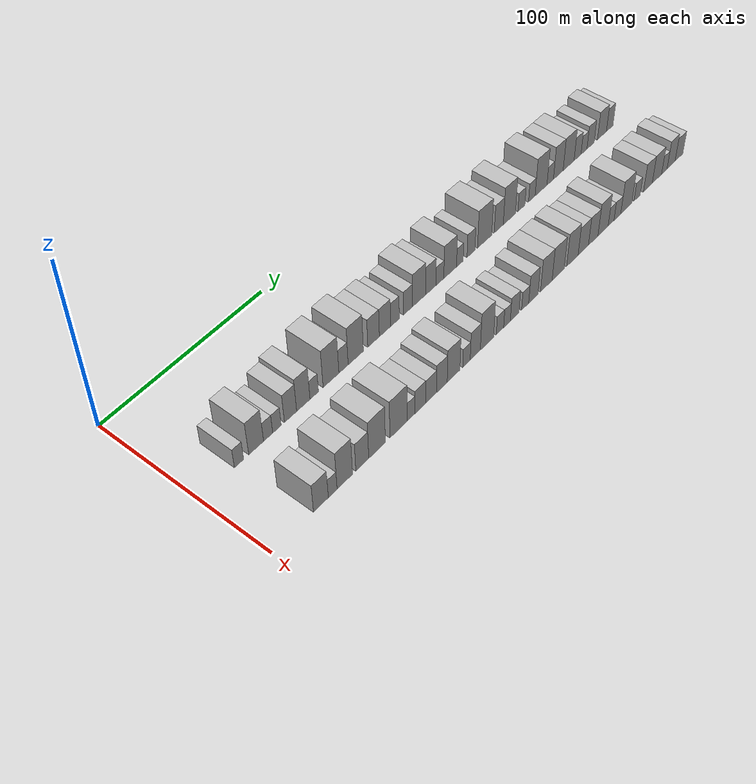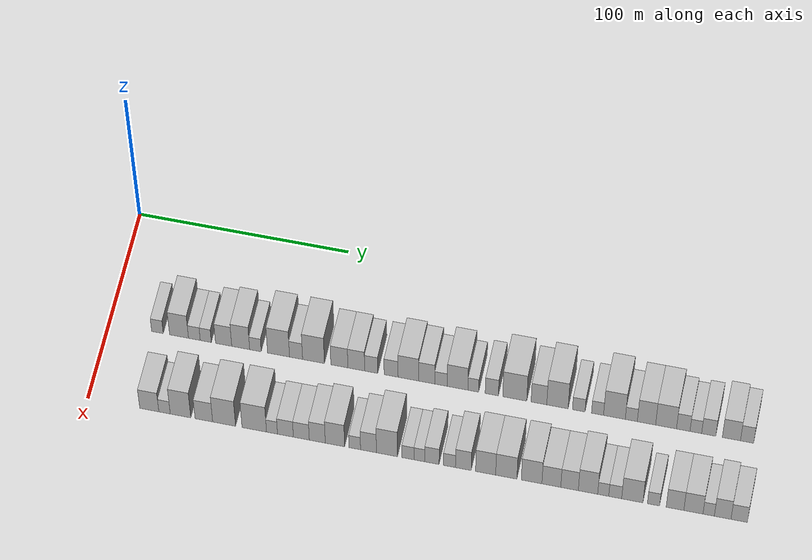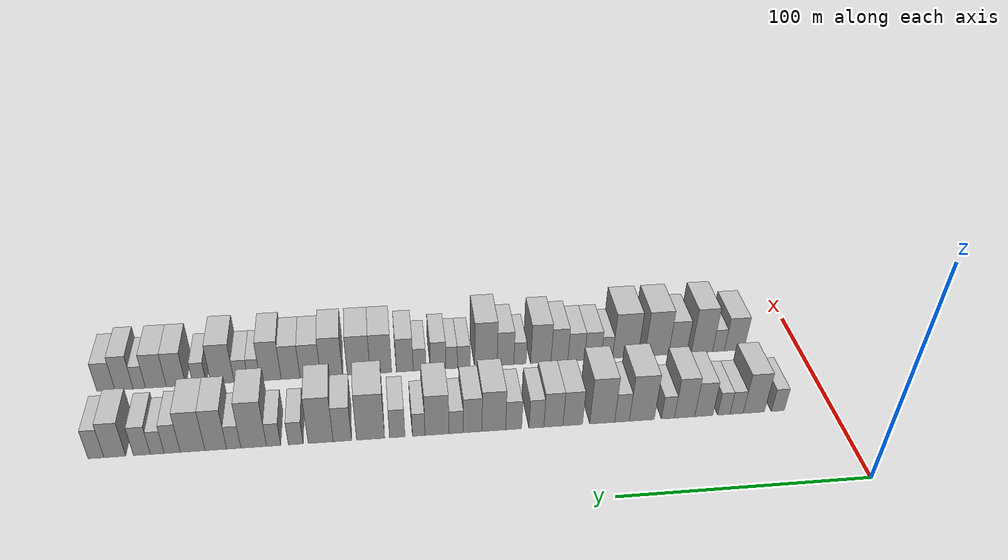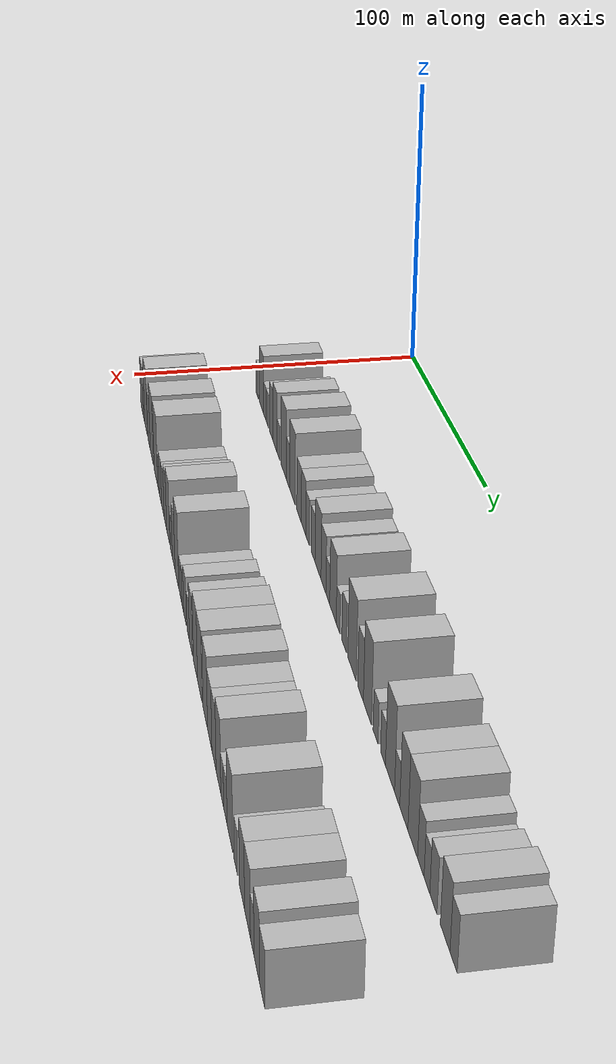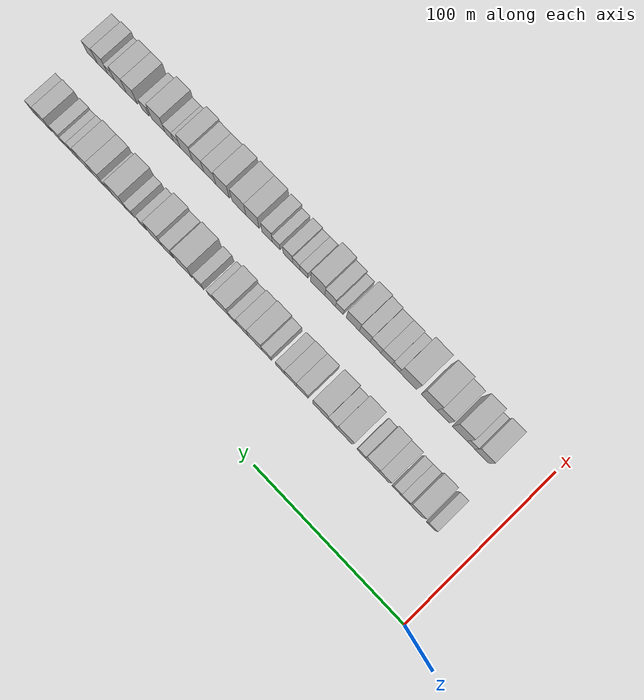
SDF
<sdf version="1.6">
 <world name="default">
  <model name="building_39">
   <static>1</static>
   <pose>50.0000 23.1446 0 0.000000 0.000000 0.000000</pose>
   <link name="link">
    <pose>0 0 6.00 0 0 0</pose>
    <collision name="collision"><geometry><box><size>20.0000 5.5098 12.0000</size></box></geometry></collision>
    <visual name="visual">
     <cast_shadows>0</cast_shadows>
     <geometry><box><size>20.0000 5.5098 12.0000</size></box></geometry>
     <material>
      <script>
       <uri>model://HANNAS_wall/materials/scripts</uri>
       <uri>model://HANNAS_wall/materials/textures</uri>
       <name>vrc/HANNAS_wall</name>
      </script>
     </material>
    </visual>
   </link>
  </model>
  <model name="building_40">
   <static>1</static>
   <pose>50.0000 33.3814 0 0.000000 0.000000 0.000000</pose>
   <link name="link">
    <pose>0 0 10.50 0 0 0</pose>
    <collision name="collision"><geometry><box><size>20.0000 8.9638 21.0000</size></box></geometry></collision>
    <visual name="visual">
     <cast_shadows>0</cast_shadows>
     <geometry><box><size>20.0000 8.9638 21.0000</size></box></geometry>
     <material>
      <script>
       <uri>model://HANNAS_wall/materials/scripts</uri>
       <uri>model://HANNAS_wall/materials/textures</uri>
       <name>vrc/HANNAS_wall</name>
      </script>
     </material>
    </visual>
   </link>
  </model>
  <model name="building_41">
   <static>1</static>
   <pose>50.0000 40.6483 0 0.000000 0.000000 0.000000</pose>
   <link name="link">
    <pose>0 0 6.00 0 0 0</pose>
    <collision name="collision"><geometry><box><size>20.0000 5.5700 12.0000</size></box></geometry></collision>
    <visual name="visual">
     <cast_shadows>0</cast_shadows>
     <geometry><box><size>20.0000 5.5700 12.0000</size></box></geometry>
     <material>
      <script>
       <uri>model://HANNAS_wall/materials/scripts</uri>
       <uri>model://HANNAS_wall/materials/textures</uri>
       <name>vrc/HANNAS_wall</name>
      </script>
     </material>
    </visual>
   </link>
  </model>
  <model name="building_42">
   <static>1</static>
   <pose>50.0000 46.0547 0 0.000000 0.000000 0.000000</pose>
   <link name="link">
    <pose>0 0 6.00 0 0 0</pose>
    <collision name="collision"><geometry><box><size>20.0000 5.2428 12.0000</size></box></geometry></collision>
    <visual name="visual">
     <cast_shadows>0</cast_shadows>
     <geometry><box><size>20.0000 5.2428 12.0000</size></box></geometry>
     <material>
      <script>
       <uri>model://HANNAS_wall/materials/scripts</uri>
       <uri>model://HANNAS_wall/materials/textures</uri>
       <name>vrc/HANNAS_wall</name>
      </script>
     </material>
    </visual>
   </link>
  </model>
  <model name="building_43">
   <static>1</static>
   <pose>50.0000 54.5110 0 0.000000 0.000000 0.000000</pose>
   <link name="link">
    <pose>0 0 9.00 0 0 0</pose>
    <collision name="collision"><geometry><box><size>20.0000 7.6698 18.0000</size></box></geometry></collision>
    <visual name="visual">
     <cast_shadows>0</cast_shadows>
     <geometry><box><size>20.0000 7.6698 18.0000</size></box></geometry>
     <material>
      <script>
       <uri>model://HANNAS_wall/materials/scripts</uri>
       <uri>model://HANNAS_wall/materials/textures</uri>
       <name>vrc/HANNAS_wall</name>
      </script>
     </material>
    </visual>
   </link>
  </model>
  <model name="building_44">
   <static>1</static>
   <pose>50.0000 62.5770 0 0.000000 0.000000 0.000000</pose>
   <link name="link">
    <pose>0 0 10.50 0 0 0</pose>
    <collision name="collision"><geometry><box><size>20.0000 8.4621 21.0000</size></box></geometry></collision>
    <visual name="visual">
     <cast_shadows>0</cast_shadows>
     <geometry><box><size>20.0000 8.4621 21.0000</size></box></geometry>
     <material>
      <script>
       <uri>model://HANNAS_wall/materials/scripts</uri>
       <uri>model://HANNAS_wall/materials/textures</uri>
       <name>vrc/HANNAS_wall</name>
      </script>
     </material>
    </visual>
   </link>
  </model>
  <model name="building_45">
   <static>1</static>
   <pose>50.0000 69.5375 0 0.000000 0.000000 0.000000</pose>
   <link name="link">
    <pose>0 0 6.00 0 0 0</pose>
    <collision name="collision"><geometry><box><size>20.0000 5.4590 12.0000</size></box></geometry></collision>
    <visual name="visual">
     <cast_shadows>0</cast_shadows>
     <geometry><box><size>20.0000 5.4590 12.0000</size></box></geometry>
     <material>
      <script>
       <uri>model://HANNAS_wall/materials/scripts</uri>
       <uri>model://HANNAS_wall/materials/textures</uri>
       <name>vrc/HANNAS_wall</name>
      </script>
     </material>
    </visual>
   </link>
  </model>
  <model name="building_46">
   <static>1</static>
   <pose>50.0000 80.4547 0 0.000000 0.000000 0.000000</pose>
   <link name="link">
    <pose>0 0 12.00 0 0 0</pose>
    <collision name="collision"><geometry><box><size>20.0000 10.3753 24.0000</size></box></geometry></collision>
    <visual name="visual">
     <cast_shadows>0</cast_shadows>
     <geometry><box><size>20.0000 10.3753 24.0000</size></box></geometry>
     <material>
      <script>
       <uri>model://HANNAS_wall/materials/scripts</uri>
       <uri>model://HANNAS_wall/materials/textures</uri>
       <name>vrc/HANNAS_wall</name>
      </script>
     </material>
    </visual>
   </link>
  </model>
  <model name="building_47">
   <static>1</static>
   <pose>50.0000 88.7172 0 0.000000 0.000000 0.000000</pose>
   <link name="link">
    <pose>0 0 7.50 0 0 0</pose>
    <collision name="collision"><geometry><box><size>20.0000 6.1498 15.0000</size></box></geometry></collision>
    <visual name="visual">
     <cast_shadows>0</cast_shadows>
     <geometry><box><size>20.0000 6.1498 15.0000</size></box></geometry>
     <material>
      <script>
       <uri>model://HANNAS_wall/materials/scripts</uri>
       <uri>model://HANNAS_wall/materials/textures</uri>
       <name>vrc/HANNAS_wall</name>
      </script>
     </material>
    </visual>
   </link>
  </model>
  <model name="building_48">
   <static>1</static>
   <pose>50.0000 96.9360 0 0.000000 0.000000 0.000000</pose>
   <link name="link">
    <pose>0 0 12.00 0 0 0</pose>
    <collision name="collision"><geometry><box><size>20.0000 10.2880 24.0000</size></box></geometry></collision>
    <visual name="visual">
     <cast_shadows>0</cast_shadows>
     <geometry><box><size>20.0000 10.2880 24.0000</size></box></geometry>
     <material>
      <script>
       <uri>model://HANNAS_wall/materials/scripts</uri>
       <uri>model://HANNAS_wall/materials/textures</uri>
       <name>vrc/HANNAS_wall</name>
      </script>
     </material>
    </visual>
   </link>
  </model>
  <model name="building_49">
   <static>1</static>
   <pose>50.0000 109.0891 0 0.000000 0.000000 0.000000</pose>
   <link name="link">
    <pose>0 0 9.00 0 0 0</pose>
    <collision name="collision"><geometry><box><size>20.0000 8.0180 18.0000</size></box></geometry></collision>
    <visual name="visual">
     <cast_shadows>0</cast_shadows>
     <geometry><box><size>20.0000 8.0180 18.0000</size></box></geometry>
     <material>
      <script>
       <uri>model://HANNAS_wall/materials/scripts</uri>
       <uri>model://HANNAS_wall/materials/textures</uri>
       <name>vrc/HANNAS_wall</name>
      </script>
     </material>
    </visual>
   </link>
  </model>
  <model name="building_50">
   <static>1</static>
   <pose>50.0000 117.0477 0 0.000000 0.000000 0.000000</pose>
   <link name="link">
    <pose>0 0 9.00 0 0 0</pose>
    <collision name="collision"><geometry><box><size>20.0000 7.8993 18.0000</size></box></geometry></collision>
    <visual name="visual">
     <cast_shadows>0</cast_shadows>
     <geometry><box><size>20.0000 7.8993 18.0000</size></box></geometry>
     <material>
      <script>
       <uri>model://HANNAS_wall/materials/scripts</uri>
       <uri>model://HANNAS_wall/materials/textures</uri>
       <name>vrc/HANNAS_wall</name>
      </script>
     </material>
    </visual>
   </link>
  </model>
  <model name="building_51">
   <static>1</static>
   <pose>50.0000 124.0484 0 0.000000 0.000000 0.000000</pose>
   <link name="link">
    <pose>0 0 7.50 0 0 0</pose>
    <collision name="collision"><geometry><box><size>20.0000 6.1020 15.0000</size></box></geometry></collision>
    <visual name="visual">
     <cast_shadows>0</cast_shadows>
     <geometry><box><size>20.0000 6.1020 15.0000</size></box></geometry>
     <material>
      <script>
       <uri>model://HANNAS_wall/materials/scripts</uri>
       <uri>model://HANNAS_wall/materials/textures</uri>
       <name>vrc/HANNAS_wall</name>
      </script>
     </material>
    </visual>
   </link>
  </model>
  <model name="building_52">
   <static>1</static>
   <pose>50.0000 133.3805 0 0.000000 0.000000 0.000000</pose>
   <link name="link">
    <pose>0 0 7.50 0 0 0</pose>
    <collision name="collision"><geometry><box><size>20.0000 6.5623 15.0000</size></box></geometry></collision>
    <visual name="visual">
     <cast_shadows>0</cast_shadows>
     <geometry><box><size>20.0000 6.5623 15.0000</size></box></geometry>
     <material>
      <script>
       <uri>model://HANNAS_wall/materials/scripts</uri>
       <uri>model://HANNAS_wall/materials/textures</uri>
       <name>vrc/HANNAS_wall</name>
      </script>
     </material>
    </visual>
   </link>
  </model>
  <model name="building_53">
   <static>1</static>
   <pose>50.0000 141.4702 0 0.000000 0.000000 0.000000</pose>
   <link name="link">
    <pose>0 0 10.50 0 0 0</pose>
    <collision name="collision"><geometry><box><size>20.0000 9.6170 21.0000</size></box></geometry></collision>
    <visual name="visual">
     <cast_shadows>0</cast_shadows>
     <geometry><box><size>20.0000 9.6170 21.0000</size></box></geometry>
     <material>
      <script>
       <uri>model://HANNAS_wall/materials/scripts</uri>
       <uri>model://HANNAS_wall/materials/textures</uri>
       <name>vrc/HANNAS_wall</name>
      </script>
     </material>
    </visual>
   </link>
  </model>
  <model name="building_54">
   <static>1</static>
   <pose>50.0000 150.0559 0 0.000000 0.000000 0.000000</pose>
   <link name="link">
    <pose>0 0 9.00 0 0 0</pose>
    <collision name="collision"><geometry><box><size>20.0000 7.5544 18.0000</size></box></geometry></collision>
    <visual name="visual">
     <cast_shadows>0</cast_shadows>
     <geometry><box><size>20.0000 7.5544 18.0000</size></box></geometry>
     <material>
      <script>
       <uri>model://HANNAS_wall/materials/scripts</uri>
       <uri>model://HANNAS_wall/materials/textures</uri>
       <name>vrc/HANNAS_wall</name>
      </script>
     </material>
    </visual>
   </link>
  </model>
  <model name="building_55">
   <static>1</static>
   <pose>50.0000 156.7606 0 0.000000 0.000000 0.000000</pose>
   <link name="link">
    <pose>0 0 6.00 0 0 0</pose>
    <collision name="collision"><geometry><box><size>20.0000 5.8550 12.0000</size></box></geometry></collision>
    <visual name="visual">
     <cast_shadows>0</cast_shadows>
     <geometry><box><size>20.0000 5.8550 12.0000</size></box></geometry>
     <material>
      <script>
       <uri>model://HANNAS_wall/materials/scripts</uri>
       <uri>model://HANNAS_wall/materials/textures</uri>
       <name>vrc/HANNAS_wall</name>
      </script>
     </material>
    </visual>
   </link>
  </model>
  <model name="building_56">
   <static>1</static>
   <pose>50.0000 164.5068 0 0.000000 0.000000 0.000000</pose>
   <link name="link">
    <pose>0 0 10.50 0 0 0</pose>
    <collision name="collision"><geometry><box><size>20.0000 9.6375 21.0000</size></box></geometry></collision>
    <visual name="visual">
     <cast_shadows>0</cast_shadows>
     <geometry><box><size>20.0000 9.6375 21.0000</size></box></geometry>
     <material>
      <script>
       <uri>model://HANNAS_wall/materials/scripts</uri>
       <uri>model://HANNAS_wall/materials/textures</uri>
       <name>vrc/HANNAS_wall</name>
      </script>
     </material>
    </visual>
   </link>
  </model>
  <model name="building_57">
   <static>1</static>
   <pose>50.0000 171.8528 0 0.000000 0.000000 0.000000</pose>
   <link name="link">
    <pose>0 0 6.00 0 0 0</pose>
    <collision name="collision"><geometry><box><size>20.0000 5.0544 12.0000</size></box></geometry></collision>
    <visual name="visual">
     <cast_shadows>0</cast_shadows>
     <geometry><box><size>20.0000 5.0544 12.0000</size></box></geometry>
     <material>
      <script>
       <uri>model://HANNAS_wall/materials/scripts</uri>
       <uri>model://HANNAS_wall/materials/textures</uri>
       <name>vrc/HANNAS_wall</name>
      </script>
     </material>
    </visual>
   </link>
  </model>
  <model name="building_58">
   <static>1</static>
   <pose>50.0000 180.4692 0 0.000000 0.000000 0.000000</pose>
   <link name="link">
    <pose>0 0 7.50 0 0 0</pose>
    <collision name="collision"><geometry><box><size>20.0000 6.1785 15.0000</size></box></geometry></collision>
    <visual name="visual">
     <cast_shadows>0</cast_shadows>
     <geometry><box><size>20.0000 6.1785 15.0000</size></box></geometry>
     <material>
      <script>
       <uri>model://HANNAS_wall/materials/scripts</uri>
       <uri>model://HANNAS_wall/materials/textures</uri>
       <name>vrc/HANNAS_wall</name>
      </script>
     </material>
    </visual>
   </link>
  </model>
  <model name="building_59">
   <static>1</static>
   <pose>50.0000 191.1664 0 0.000000 0.000000 0.000000</pose>
   <link name="link">
    <pose>0 0 12.00 0 0 0</pose>
    <collision name="collision"><geometry><box><size>20.0000 11.2157 24.0000</size></box></geometry></collision>
    <visual name="visual">
     <cast_shadows>0</cast_shadows>
     <geometry><box><size>20.0000 11.2157 24.0000</size></box></geometry>
     <material>
      <script>
       <uri>model://HANNAS_wall/materials/scripts</uri>
       <uri>model://HANNAS_wall/materials/textures</uri>
       <name>vrc/HANNAS_wall</name>
      </script>
     </material>
    </visual>
   </link>
  </model>
  <model name="building_60">
   <static>1</static>
   <pose>50.0000 202.4280 0 0.000000 0.000000 0.000000</pose>
   <link name="link">
    <pose>0 0 9.00 0 0 0</pose>
    <collision name="collision"><geometry><box><size>20.0000 7.3075 18.0000</size></box></geometry></collision>
    <visual name="visual">
     <cast_shadows>0</cast_shadows>
     <geometry><box><size>20.0000 7.3075 18.0000</size></box></geometry>
     <material>
      <script>
       <uri>model://HANNAS_wall/materials/scripts</uri>
       <uri>model://HANNAS_wall/materials/textures</uri>
       <name>vrc/HANNAS_wall</name>
      </script>
     </material>
    </visual>
   </link>
  </model>
  <model name="building_61">
   <static>1</static>
   <pose>50.0000 211.0458 0 0.000000 0.000000 0.000000</pose>
   <link name="link">
    <pose>0 0 12.00 0 0 0</pose>
    <collision name="collision"><geometry><box><size>20.0000 9.9281 24.0000</size></box></geometry></collision>
    <visual name="visual">
     <cast_shadows>0</cast_shadows>
     <geometry><box><size>20.0000 9.9281 24.0000</size></box></geometry>
     <material>
      <script>
       <uri>model://HANNAS_wall/materials/scripts</uri>
       <uri>model://HANNAS_wall/materials/textures</uri>
       <name>vrc/HANNAS_wall</name>
      </script>
     </material>
    </visual>
   </link>
  </model>
  <model name="building_62">
   <static>1</static>
   <pose>50.0000 220.9397 0 0.000000 0.000000 0.000000</pose>
   <link name="link">
    <pose>0 0 6.00 0 0 0</pose>
    <collision name="collision"><geometry><box><size>20.0000 5.8596 12.0000</size></box></geometry></collision>
    <visual name="visual">
     <cast_shadows>0</cast_shadows>
     <geometry><box><size>20.0000 5.8596 12.0000</size></box></geometry>
     <material>
      <script>
       <uri>model://HANNAS_wall/materials/scripts</uri>
       <uri>model://HANNAS_wall/materials/textures</uri>
       <name>vrc/HANNAS_wall</name>
      </script>
     </material>
    </visual>
   </link>
  </model>
  <model name="building_63">
   <static>1</static>
   <pose>50.0000 229.6575 0 0.000000 0.000000 0.000000</pose>
   <link name="link">
    <pose>0 0 6.00 0 0 0</pose>
    <collision name="collision"><geometry><box><size>20.0000 5.5760 12.0000</size></box></geometry></collision>
    <visual name="visual">
     <cast_shadows>0</cast_shadows>
     <geometry><box><size>20.0000 5.5760 12.0000</size></box></geometry>
     <material>
      <script>
       <uri>model://HANNAS_wall/materials/scripts</uri>
       <uri>model://HANNAS_wall/materials/textures</uri>
       <name>vrc/HANNAS_wall</name>
      </script>
     </material>
    </visual>
   </link>
  </model>
  <model name="building_64">
   <static>1</static>
   <pose>50.0000 237.4884 0 0.000000 0.000000 0.000000</pose>
   <link name="link">
    <pose>0 0 12.00 0 0 0</pose>
    <collision name="collision"><geometry><box><size>20.0000 10.0859 24.0000</size></box></geometry></collision>
    <visual name="visual">
     <cast_shadows>0</cast_shadows>
     <geometry><box><size>20.0000 10.0859 24.0000</size></box></geometry>
     <material>
      <script>
       <uri>model://HANNAS_wall/materials/scripts</uri>
       <uri>model://HANNAS_wall/materials/textures</uri>
       <name>vrc/HANNAS_wall</name>
      </script>
     </material>
    </visual>
   </link>
  </model>
  <model name="building_65">
   <static>1</static>
   <pose>50.0000 245.3128 0 0.000000 0.000000 0.000000</pose>
   <link name="link">
    <pose>0 0 6.00 0 0 0</pose>
    <collision name="collision"><geometry><box><size>20.0000 5.5628 12.0000</size></box></geometry></collision>
    <visual name="visual">
     <cast_shadows>0</cast_shadows>
     <geometry><box><size>20.0000 5.5628 12.0000</size></box></geometry>
     <material>
      <script>
       <uri>model://HANNAS_wall/materials/scripts</uri>
       <uri>model://HANNAS_wall/materials/textures</uri>
       <name>vrc/HANNAS_wall</name>
      </script>
     </material>
    </visual>
   </link>
  </model>
  <model name="building_66">
   <static>1</static>
   <pose>50.0000 252.3276 0 0.000000 0.000000 0.000000</pose>
   <link name="link">
    <pose>0 0 10.50 0 0 0</pose>
    <collision name="collision"><geometry><box><size>20.0000 8.4668 21.0000</size></box></geometry></collision>
    <visual name="visual">
     <cast_shadows>0</cast_shadows>
     <geometry><box><size>20.0000 8.4668 21.0000</size></box></geometry>
     <material>
      <script>
       <uri>model://HANNAS_wall/materials/scripts</uri>
       <uri>model://HANNAS_wall/materials/textures</uri>
       <name>vrc/HANNAS_wall</name>
      </script>
     </material>
    </visual>
   </link>
  </model>
  <model name="building_67">
   <static>1</static>
   <pose>50.0000 261.3842 0 0.000000 0.000000 0.000000</pose>
   <link name="link">
    <pose>0 0 10.50 0 0 0</pose>
    <collision name="collision"><geometry><box><size>20.0000 9.6465 21.0000</size></box></geometry></collision>
    <visual name="visual">
     <cast_shadows>0</cast_shadows>
     <geometry><box><size>20.0000 9.6465 21.0000</size></box></geometry>
     <material>
      <script>
       <uri>model://HANNAS_wall/materials/scripts</uri>
       <uri>model://HANNAS_wall/materials/textures</uri>
       <name>vrc/HANNAS_wall</name>
      </script>
     </material>
    </visual>
   </link>
  </model>
  <model name="building_68">
   <static>1</static>
   <pose>50.0000 269.3198 0 0.000000 0.000000 0.000000</pose>
   <link name="link">
    <pose>0 0 7.50 0 0 0</pose>
    <collision name="collision"><geometry><box><size>20.0000 6.2247 15.0000</size></box></geometry></collision>
    <visual name="visual">
     <cast_shadows>0</cast_shadows>
     <geometry><box><size>20.0000 6.2247 15.0000</size></box></geometry>
     <material>
      <script>
       <uri>model://HANNAS_wall/materials/scripts</uri>
       <uri>model://HANNAS_wall/materials/textures</uri>
       <name>vrc/HANNAS_wall</name>
      </script>
     </material>
    </visual>
   </link>
  </model>
  <model name="building_69">
   <static>1</static>
   <pose>50.0000 275.1232 0 0.000000 0.000000 0.000000</pose>
   <link name="link">
    <pose>0 0 6.00 0 0 0</pose>
    <collision name="collision"><geometry><box><size>20.0000 5.3821 12.0000</size></box></geometry></collision>
    <visual name="visual">
     <cast_shadows>0</cast_shadows>
     <geometry><box><size>20.0000 5.3821 12.0000</size></box></geometry>
     <material>
      <script>
       <uri>model://HANNAS_wall/materials/scripts</uri>
       <uri>model://HANNAS_wall/materials/textures</uri>
       <name>vrc/HANNAS_wall</name>
      </script>
     </material>
    </visual>
   </link>
  </model>
  <model name="building_70">
   <static>1</static>
   <pose>50.0000 281.0798 0 0.000000 0.000000 0.000000</pose>
   <link name="link">
    <pose>0 0 7.50 0 0 0</pose>
    <collision name="collision"><geometry><box><size>20.0000 6.5311 15.0000</size></box></geometry></collision>
    <visual name="visual">
     <cast_shadows>0</cast_shadows>
     <geometry><box><size>20.0000 6.5311 15.0000</size></box></geometry>
     <material>
      <script>
       <uri>model://HANNAS_wall/materials/scripts</uri>
       <uri>model://HANNAS_wall/materials/textures</uri>
       <name>vrc/HANNAS_wall</name>
      </script>
     </material>
    </visual>
   </link>
  </model>
  <model name="building_71">
   <static>1</static>
   <pose>50.0000 291.5283 0 0.000000 0.000000 0.000000</pose>
   <link name="link">
    <pose>0 0 9.00 0 0 0</pose>
    <collision name="collision"><geometry><box><size>20.0000 8.3660 18.0000</size></box></geometry></collision>
    <visual name="visual">
     <cast_shadows>0</cast_shadows>
     <geometry><box><size>20.0000 8.3660 18.0000</size></box></geometry>
     <material>
      <script>
       <uri>model://HANNAS_wall/materials/scripts</uri>
       <uri>model://HANNAS_wall/materials/textures</uri>
       <name>vrc/HANNAS_wall</name>
      </script>
     </material>
    </visual>
   </link>
  </model>
  <model name="building_72">
   <static>1</static>
   <pose>50.0000 298.7532 0 0.000000 0.000000 0.000000</pose>
   <link name="link">
    <pose>0 0 7.50 0 0 0</pose>
    <collision name="collision"><geometry><box><size>20.0000 6.0837 15.0000</size></box></geometry></collision>
    <visual name="visual">
     <cast_shadows>0</cast_shadows>
     <geometry><box><size>20.0000 6.0837 15.0000</size></box></geometry>
     <material>
      <script>
       <uri>model://HANNAS_wall/materials/scripts</uri>
       <uri>model://HANNAS_wall/materials/textures</uri>
       <name>vrc/HANNAS_wall</name>
      </script>
     </material>
    </visual>
   </link>
  </model>
  <model name="building_102">
   <static>1</static>
   <pose>90.0000 29.1217 0 0.000000 0.000000 0.000000</pose>
   <link name="link">
    <pose>0 0 9.00 0 0 0</pose>
    <collision name="collision"><geometry><box><size>20.0000 8.9713 18.0000</size></box></geometry></collision>
    <visual name="visual">
     <cast_shadows>0</cast_shadows>
     <geometry><box><size>20.0000 8.9713 18.0000</size></box></geometry>
     <material>
      <script>
       <uri>model://HANNAS_wall/materials/scripts</uri>
       <uri>model://HANNAS_wall/materials/textures</uri>
       <name>vrc/HANNAS_wall</name>
      </script>
     </material>
    </visual>
   </link>
  </model>
  <model name="building_103">
   <static>1</static>
   <pose>90.0000 36.2832 0 0.000000 0.000000 0.000000</pose>
   <link name="link">
    <pose>0 0 6.00 0 0 0</pose>
    <collision name="collision"><geometry><box><size>20.0000 5.3517 12.0000</size></box></geometry></collision>
    <visual name="visual">
     <cast_shadows>0</cast_shadows>
     <geometry><box><size>20.0000 5.3517 12.0000</size></box></geometry>
     <material>
      <script>
       <uri>model://HANNAS_wall/materials/scripts</uri>
       <uri>model://HANNAS_wall/materials/textures</uri>
       <name>vrc/HANNAS_wall</name>
      </script>
     </material>
    </visual>
   </link>
  </model>
  <model name="building_104">
   <static>1</static>
   <pose>90.0000 43.7792 0 0.000000 0.000000 0.000000</pose>
   <link name="link">
    <pose>0 0 12.00 0 0 0</pose>
    <collision name="collision"><geometry><box><size>20.0000 9.6404 24.0000</size></box></geometry></collision>
    <visual name="visual">
     <cast_shadows>0</cast_shadows>
     <geometry><box><size>20.0000 9.6404 24.0000</size></box></geometry>
     <material>
      <script>
       <uri>model://HANNAS_wall/materials/scripts</uri>
       <uri>model://HANNAS_wall/materials/textures</uri>
       <name>vrc/HANNAS_wall</name>
      </script>
     </material>
    </visual>
   </link>
  </model>
  <model name="building_105">
   <static>1</static>
   <pose>90.0000 54.7107 0 0.000000 0.000000 0.000000</pose>
   <link name="link">
    <pose>0 0 9.00 0 0 0</pose>
    <collision name="collision"><geometry><box><size>20.0000 8.2225 18.0000</size></box></geometry></collision>
    <visual name="visual">
     <cast_shadows>0</cast_shadows>
     <geometry><box><size>20.0000 8.2225 18.0000</size></box></geometry>
     <material>
      <script>
       <uri>model://HANNAS_wall/materials/scripts</uri>
       <uri>model://HANNAS_wall/materials/textures</uri>
       <name>vrc/HANNAS_wall</name>
      </script>
     </material>
    </visual>
   </link>
  </model>
  <model name="building_106">
   <static>1</static>
   <pose>90.0000 64.1872 0 0.000000 0.000000 0.000000</pose>
   <link name="link">
    <pose>0 0 12.00 0 0 0</pose>
    <collision name="collision"><geometry><box><size>20.0000 10.7304 24.0000</size></box></geometry></collision>
    <visual name="visual">
     <cast_shadows>0</cast_shadows>
     <geometry><box><size>20.0000 10.7304 24.0000</size></box></geometry>
     <material>
      <script>
       <uri>model://HANNAS_wall/materials/scripts</uri>
       <uri>model://HANNAS_wall/materials/textures</uri>
       <name>vrc/HANNAS_wall</name>
      </script>
     </material>
    </visual>
   </link>
  </model>
  <model name="building_107">
   <static>1</static>
   <pose>90.0000 78.2740 0 0.000000 0.000000 0.000000</pose>
   <link name="link">
    <pose>0 0 12.00 0 0 0</pose>
    <collision name="collision"><geometry><box><size>20.0000 11.4433 24.0000</size></box></geometry></collision>
    <visual name="visual">
     <cast_shadows>0</cast_shadows>
     <geometry><box><size>20.0000 11.4433 24.0000</size></box></geometry>
     <material>
      <script>
       <uri>model://HANNAS_wall/materials/scripts</uri>
       <uri>model://HANNAS_wall/materials/textures</uri>
       <name>vrc/HANNAS_wall</name>
      </script>
     </material>
    </visual>
   </link>
  </model>
  <model name="building_108">
   <static>1</static>
   <pose>90.0000 86.5516 0 0.000000 0.000000 0.000000</pose>
   <link name="link">
    <pose>0 0 6.00 0 0 0</pose>
    <collision name="collision"><geometry><box><size>20.0000 5.1120 12.0000</size></box></geometry></collision>
    <visual name="visual">
     <cast_shadows>0</cast_shadows>
     <geometry><box><size>20.0000 5.1120 12.0000</size></box></geometry>
     <material>
      <script>
       <uri>model://HANNAS_wall/materials/scripts</uri>
       <uri>model://HANNAS_wall/materials/textures</uri>
       <name>vrc/HANNAS_wall</name>
      </script>
     </material>
    </visual>
   </link>
  </model>
  <model name="building_109">
   <static>1</static>
   <pose>90.0000 92.8105 0 0.000000 0.000000 0.000000</pose>
   <link name="link">
    <pose>0 0 7.50 0 0 0</pose>
    <collision name="collision"><geometry><box><size>20.0000 7.4057 15.0000</size></box></geometry></collision>
    <visual name="visual">
     <cast_shadows>0</cast_shadows>
     <geometry><box><size>20.0000 7.4057 15.0000</size></box></geometry>
     <material>
      <script>
       <uri>model://HANNAS_wall/materials/scripts</uri>
       <uri>model://HANNAS_wall/materials/textures</uri>
       <name>vrc/HANNAS_wall</name>
      </script>
     </material>
    </visual>
   </link>
  </model>
  <model name="building_110">
   <static>1</static>
   <pose>90.0000 100.2233 0 0.000000 0.000000 0.000000</pose>
   <link name="link">
    <pose>0 0 7.50 0 0 0</pose>
    <collision name="collision"><geometry><box><size>20.0000 7.4199 15.0000</size></box></geometry></collision>
    <visual name="visual">
     <cast_shadows>0</cast_shadows>
     <geometry><box><size>20.0000 7.4199 15.0000</size></box></geometry>
     <material>
      <script>
       <uri>model://HANNAS_wall/materials/scripts</uri>
       <uri>model://HANNAS_wall/materials/textures</uri>
       <name>vrc/HANNAS_wall</name>
      </script>
     </material>
    </visual>
   </link>
  </model>
  <model name="building_111">
   <static>1</static>
   <pose>90.0000 107.6613 0 0.000000 0.000000 0.000000</pose>
   <link name="link">
    <pose>0 0 9.00 0 0 0</pose>
    <collision name="collision"><geometry><box><size>20.0000 7.4562 18.0000</size></box></geometry></collision>
    <visual name="visual">
     <cast_shadows>0</cast_shadows>
     <geometry><box><size>20.0000 7.4562 18.0000</size></box></geometry>
     <material>
      <script>
       <uri>model://HANNAS_wall/materials/scripts</uri>
       <uri>model://HANNAS_wall/materials/textures</uri>
       <name>vrc/HANNAS_wall</name>
      </script>
     </material>
    </visual>
   </link>
  </model>
  <model name="building_112">
   <static>1</static>
   <pose>90.0000 115.8866 0 0.000000 0.000000 0.000000</pose>
   <link name="link">
    <pose>0 0 10.50 0 0 0</pose>
    <collision name="collision"><geometry><box><size>20.0000 8.9945 21.0000</size></box></geometry></collision>
    <visual name="visual">
     <cast_shadows>0</cast_shadows>
     <geometry><box><size>20.0000 8.9945 21.0000</size></box></geometry>
     <material>
      <script>
       <uri>model://HANNAS_wall/materials/scripts</uri>
       <uri>model://HANNAS_wall/materials/textures</uri>
       <name>vrc/HANNAS_wall</name>
      </script>
     </material>
    </visual>
   </link>
  </model>
  <model name="building_113">
   <static>1</static>
   <pose>90.0000 125.0747 0 0.000000 0.000000 0.000000</pose>
   <link name="link">
    <pose>0 0 6.00 0 0 0</pose>
    <collision name="collision"><geometry><box><size>20.0000 5.3817 12.0000</size></box></geometry></collision>
    <visual name="visual">
     <cast_shadows>0</cast_shadows>
     <geometry><box><size>20.0000 5.3817 12.0000</size></box></geometry>
     <material>
      <script>
       <uri>model://HANNAS_wall/materials/scripts</uri>
       <uri>model://HANNAS_wall/materials/textures</uri>
       <name>vrc/HANNAS_wall</name>
      </script>
     </material>
    </visual>
   </link>
  </model>
  <model name="building_114">
   <static>1</static>
   <pose>90.0000 131.4530 0 0.000000 0.000000 0.000000</pose>
   <link name="link">
    <pose>0 0 9.00 0 0 0</pose>
    <collision name="collision"><geometry><box><size>20.0000 7.3749 18.0000</size></box></geometry></collision>
    <visual name="visual">
     <cast_shadows>0</cast_shadows>
     <geometry><box><size>20.0000 7.3749 18.0000</size></box></geometry>
     <material>
      <script>
       <uri>model://HANNAS_wall/materials/scripts</uri>
       <uri>model://HANNAS_wall/materials/textures</uri>
       <name>vrc/HANNAS_wall</name>
      </script>
     </material>
    </visual>
   </link>
  </model>
  <model name="building_115">
   <static>1</static>
   <pose>90.0000 140.0361 0 0.000000 0.000000 0.000000</pose>
   <link name="link">
    <pose>0 0 12.00 0 0 0</pose>
    <collision name="collision"><geometry><box><size>20.0000 9.7913 24.0000</size></box></geometry></collision>
    <visual name="visual">
     <cast_shadows>0</cast_shadows>
     <geometry><box><size>20.0000 9.7913 24.0000</size></box></geometry>
     <material>
      <script>
       <uri>model://HANNAS_wall/materials/scripts</uri>
       <uri>model://HANNAS_wall/materials/textures</uri>
       <name>vrc/HANNAS_wall</name>
      </script>
     </material>
    </visual>
   </link>
  </model>
  <model name="building_116">
   <static>1</static>
   <pose>90.0000 149.7193 0 0.000000 0.000000 0.000000</pose>
   <link name="link">
    <pose>0 0 6.00 0 0 0</pose>
    <collision name="collision"><geometry><box><size>20.0000 5.5751 12.0000</size></box></geometry></collision>
    <visual name="visual">
     <cast_shadows>0</cast_shadows>
     <geometry><box><size>20.0000 5.5751 12.0000</size></box></geometry>
     <material>
      <script>
       <uri>model://HANNAS_wall/materials/scripts</uri>
       <uri>model://HANNAS_wall/materials/textures</uri>
       <name>vrc/HANNAS_wall</name>
      </script>
     </material>
    </visual>
   </link>
  </model>
  <model name="building_117">
   <static>1</static>
   <pose>90.0000 155.0196 0 0.000000 0.000000 0.000000</pose>
   <link name="link">
    <pose>0 0 6.00 0 0 0</pose>
    <collision name="collision"><geometry><box><size>20.0000 5.0254 12.0000</size></box></geometry></collision>
    <visual name="visual">
     <cast_shadows>0</cast_shadows>
     <geometry><box><size>20.0000 5.0254 12.0000</size></box></geometry>
     <material>
      <script>
       <uri>model://HANNAS_wall/materials/scripts</uri>
       <uri>model://HANNAS_wall/materials/textures</uri>
       <name>vrc/HANNAS_wall</name>
      </script>
     </material>
    </visual>
   </link>
  </model>
  <model name="building_118">
   <static>1</static>
   <pose>90.0000 160.8534 0 0.000000 0.000000 0.000000</pose>
   <link name="link">
    <pose>0 0 7.50 0 0 0</pose>
    <collision name="collision"><geometry><box><size>20.0000 6.6423 15.0000</size></box></geometry></collision>
    <visual name="visual">
     <cast_shadows>0</cast_shadows>
     <geometry><box><size>20.0000 6.6423 15.0000</size></box></geometry>
     <material>
      <script>
       <uri>model://HANNAS_wall/materials/scripts</uri>
       <uri>model://HANNAS_wall/materials/textures</uri>
       <name>vrc/HANNAS_wall</name>
      </script>
     </material>
    </visual>
   </link>
  </model>
  <model name="building_119">
   <static>1</static>
   <pose>90.0000 168.9475 0 0.000000 0.000000 0.000000</pose>
   <link name="link">
    <pose>0 0 6.00 0 0 0</pose>
    <collision name="collision"><geometry><box><size>20.0000 5.5458 12.0000</size></box></geometry></collision>
    <visual name="visual">
     <cast_shadows>0</cast_shadows>
     <geometry><box><size>20.0000 5.5458 12.0000</size></box></geometry>
     <material>
      <script>
       <uri>model://HANNAS_wall/materials/scripts</uri>
       <uri>model://HANNAS_wall/materials/textures</uri>
       <name>vrc/HANNAS_wall</name>
      </script>
     </material>
    </visual>
   </link>
  </model>
  <model name="building_120">
   <static>1</static>
   <pose>90.0000 175.3671 0 0.000000 0.000000 0.000000</pose>
   <link name="link">
    <pose>0 0 9.00 0 0 0</pose>
    <collision name="collision"><geometry><box><size>20.0000 7.2933 18.0000</size></box></geometry></collision>
    <visual name="visual">
     <cast_shadows>0</cast_shadows>
     <geometry><box><size>20.0000 7.2933 18.0000</size></box></geometry>
     <material>
      <script>
       <uri>model://HANNAS_wall/materials/scripts</uri>
       <uri>model://HANNAS_wall/materials/textures</uri>
       <name>vrc/HANNAS_wall</name>
      </script>
     </material>
    </visual>
   </link>
  </model>
  <model name="building_121">
   <static>1</static>
   <pose>90.0000 185.6523 0 0.000000 0.000000 0.000000</pose>
   <link name="link">
    <pose>0 0 10.50 0 0 0</pose>
    <collision name="collision"><geometry><box><size>20.0000 9.2771 21.0000</size></box></geometry></collision>
    <visual name="visual">
     <cast_shadows>0</cast_shadows>
     <geometry><box><size>20.0000 9.2771 21.0000</size></box></geometry>
     <material>
      <script>
       <uri>model://HANNAS_wall/materials/scripts</uri>
       <uri>model://HANNAS_wall/materials/textures</uri>
       <name>vrc/HANNAS_wall</name>
      </script>
     </material>
    </visual>
   </link>
  </model>
  <model name="building_122">
   <static>1</static>
   <pose>90.0000 195.1952 0 0.000000 0.000000 0.000000</pose>
   <link name="link">
    <pose>0 0 10.50 0 0 0</pose>
    <collision name="collision"><geometry><box><size>20.0000 9.8086 21.0000</size></box></geometry></collision>
    <visual name="visual">
     <cast_shadows>0</cast_shadows>
     <geometry><box><size>20.0000 9.8086 21.0000</size></box></geometry>
     <material>
      <script>
       <uri>model://HANNAS_wall/materials/scripts</uri>
       <uri>model://HANNAS_wall/materials/textures</uri>
       <name>vrc/HANNAS_wall</name>
      </script>
     </material>
    </visual>
   </link>
  </model>
  <model name="building_123">
   <static>1</static>
   <pose>90.0000 206.8475 0 0.000000 0.000000 0.000000</pose>
   <link name="link">
    <pose>0 0 10.50 0 0 0</pose>
    <collision name="collision"><geometry><box><size>20.0000 9.4960 21.0000</size></box></geometry></collision>
    <visual name="visual">
     <cast_shadows>0</cast_shadows>
     <geometry><box><size>20.0000 9.4960 21.0000</size></box></geometry>
     <material>
      <script>
       <uri>model://HANNAS_wall/materials/scripts</uri>
       <uri>model://HANNAS_wall/materials/textures</uri>
       <name>vrc/HANNAS_wall</name>
      </script>
     </material>
    </visual>
   </link>
  </model>
  <model name="building_124">
   <static>1</static>
   <pose>90.0000 215.9373 0 0.000000 0.000000 0.000000</pose>
   <link name="link">
    <pose>0 0 9.00 0 0 0</pose>
    <collision name="collision"><geometry><box><size>20.0000 8.6836 18.0000</size></box></geometry></collision>
    <visual name="visual">
     <cast_shadows>0</cast_shadows>
     <geometry><box><size>20.0000 8.6836 18.0000</size></box></geometry>
     <material>
      <script>
       <uri>model://HANNAS_wall/materials/scripts</uri>
       <uri>model://HANNAS_wall/materials/textures</uri>
       <name>vrc/HANNAS_wall</name>
      </script>
     </material>
    </visual>
   </link>
  </model>
  <model name="building_125">
   <static>1</static>
   <pose>90.0000 224.3001 0 0.000000 0.000000 0.000000</pose>
   <link name="link">
    <pose>0 0 9.00 0 0 0</pose>
    <collision name="collision"><geometry><box><size>20.0000 8.0420 18.0000</size></box></geometry></collision>
    <visual name="visual">
     <cast_shadows>0</cast_shadows>
     <geometry><box><size>20.0000 8.0420 18.0000</size></box></geometry>
     <material>
      <script>
       <uri>model://HANNAS_wall/materials/scripts</uri>
       <uri>model://HANNAS_wall/materials/textures</uri>
       <name>vrc/HANNAS_wall</name>
      </script>
     </material>
    </visual>
   </link>
  </model>
  <model name="building_126">
   <static>1</static>
   <pose>90.0000 232.7669 0 0.000000 0.000000 0.000000</pose>
   <link name="link">
    <pose>0 0 10.50 0 0 0</pose>
    <collision name="collision"><geometry><box><size>20.0000 8.8915 21.0000</size></box></geometry></collision>
    <visual name="visual">
     <cast_shadows>0</cast_shadows>
     <geometry><box><size>20.0000 8.8915 21.0000</size></box></geometry>
     <material>
      <script>
       <uri>model://HANNAS_wall/materials/scripts</uri>
       <uri>model://HANNAS_wall/materials/textures</uri>
       <name>vrc/HANNAS_wall</name>
      </script>
     </material>
    </visual>
   </link>
  </model>
  <model name="building_127">
   <static>1</static>
   <pose>90.0000 239.7435 0 0.000000 0.000000 0.000000</pose>
   <link name="link">
    <pose>0 0 6.00 0 0 0</pose>
    <collision name="collision"><geometry><box><size>20.0000 5.0617 12.0000</size></box></geometry></collision>
    <visual name="visual">
     <cast_shadows>0</cast_shadows>
     <geometry><box><size>20.0000 5.0617 12.0000</size></box></geometry>
     <material>
      <script>
       <uri>model://HANNAS_wall/materials/scripts</uri>
       <uri>model://HANNAS_wall/materials/textures</uri>
       <name>vrc/HANNAS_wall</name>
      </script>
     </material>
    </visual>
   </link>
  </model>
  <model name="building_128">
   <static>1</static>
   <pose>90.0000 245.2359 0 0.000000 0.000000 0.000000</pose>
   <link name="link">
    <pose>0 0 6.00 0 0 0</pose>
    <collision name="collision"><geometry><box><size>20.0000 5.9233 12.0000</size></box></geometry></collision>
    <visual name="visual">
     <cast_shadows>0</cast_shadows>
     <geometry><box><size>20.0000 5.9233 12.0000</size></box></geometry>
     <material>
      <script>
       <uri>model://HANNAS_wall/materials/scripts</uri>
       <uri>model://HANNAS_wall/materials/textures</uri>
       <name>vrc/HANNAS_wall</name>
      </script>
     </material>
    </visual>
   </link>
  </model>
  <model name="building_129">
   <static>1</static>
   <pose>90.0000 253.0854 0 0.000000 0.000000 0.000000</pose>
   <link name="link">
    <pose>0 0 10.50 0 0 0</pose>
    <collision name="collision"><geometry><box><size>20.0000 9.7758 21.0000</size></box></geometry></collision>
    <visual name="visual">
     <cast_shadows>0</cast_shadows>
     <geometry><box><size>20.0000 9.7758 21.0000</size></box></geometry>
     <material>
      <script>
       <uri>model://HANNAS_wall/materials/scripts</uri>
       <uri>model://HANNAS_wall/materials/textures</uri>
       <name>vrc/HANNAS_wall</name>
      </script>
     </material>
    </visual>
   </link>
  </model>
  <model name="building_130">
   <static>1</static>
   <pose>90.0000 262.7719 0 0.000000 0.000000 0.000000</pose>
   <link name="link">
    <pose>0 0 6.00 0 0 0</pose>
    <collision name="collision"><geometry><box><size>20.0000 5.5971 12.0000</size></box></geometry></collision>
    <visual name="visual">
     <cast_shadows>0</cast_shadows>
     <geometry><box><size>20.0000 5.5971 12.0000</size></box></geometry>
     <material>
      <script>
       <uri>model://HANNAS_wall/materials/scripts</uri>
       <uri>model://HANNAS_wall/materials/textures</uri>
       <name>vrc/HANNAS_wall</name>
      </script>
     </material>
    </visual>
   </link>
  </model>
  <model name="building_131">
   <static>1</static>
   <pose>90.0000 272.6112 0 0.000000 0.000000 0.000000</pose>
   <link name="link">
    <pose>0 0 9.00 0 0 0</pose>
    <collision name="collision"><geometry><box><size>20.0000 8.0816 18.0000</size></box></geometry></collision>
    <visual name="visual">
     <cast_shadows>0</cast_shadows>
     <geometry><box><size>20.0000 8.0816 18.0000</size></box></geometry>
     <material>
      <script>
       <uri>model://HANNAS_wall/materials/scripts</uri>
       <uri>model://HANNAS_wall/materials/textures</uri>
       <name>vrc/HANNAS_wall</name>
      </script>
     </material>
    </visual>
   </link>
  </model>
  <model name="building_132">
   <static>1</static>
   <pose>90.0000 281.0185 0 0.000000 0.000000 0.000000</pose>
   <link name="link">
    <pose>0 0 9.00 0 0 0</pose>
    <collision name="collision"><geometry><box><size>20.0000 8.7329 18.0000</size></box></geometry></collision>
    <visual name="visual">
     <cast_shadows>0</cast_shadows>
     <geometry><box><size>20.0000 8.7329 18.0000</size></box></geometry>
     <material>
      <script>
       <uri>model://HANNAS_wall/materials/scripts</uri>
       <uri>model://HANNAS_wall/materials/textures</uri>
       <name>vrc/HANNAS_wall</name>
      </script>
     </material>
    </visual>
   </link>
  </model>
  <model name="building_133">
   <static>1</static>
   <pose>90.0000 287.9675 0 0.000000 0.000000 0.000000</pose>
   <link name="link">
    <pose>0 0 6.00 0 0 0</pose>
    <collision name="collision"><geometry><box><size>20.0000 5.1651 12.0000</size></box></geometry></collision>
    <visual name="visual">
     <cast_shadows>0</cast_shadows>
     <geometry><box><size>20.0000 5.1651 12.0000</size></box></geometry>
     <material>
      <script>
       <uri>model://HANNAS_wall/materials/scripts</uri>
       <uri>model://HANNAS_wall/materials/textures</uri>
       <name>vrc/HANNAS_wall</name>
      </script>
     </material>
    </visual>
   </link>
  </model>
  <model name="building_134">
   <static>1</static>
   <pose>90.0000 294.3468 0 0.000000 0.000000 0.000000</pose>
   <link name="link">
    <pose>0 0 9.00 0 0 0</pose>
    <collision name="collision"><geometry><box><size>20.0000 7.5934 18.0000</size></box></geometry></collision>
    <visual name="visual">
     <cast_shadows>0</cast_shadows>
     <geometry><box><size>20.0000 7.5934 18.0000</size></box></geometry>
     <material>
      <script>
       <uri>model://HANNAS_wall/materials/scripts</uri>
       <uri>model://HANNAS_wall/materials/textures</uri>
       <name>vrc/HANNAS_wall</name>
      </script>
     </material>
    </visual>
   </link>
  </model>
  <model name="building_135">
   <static>1</static>
   <pose>90.0000 301.8692 0 0.000000 0.000000 0.000000</pose>
   <link name="link">
    <pose>0 0 7.50 0 0 0</pose>
    <collision name="collision"><geometry><box><size>20.0000 7.4515 15.0000</size></box></geometry></collision>
    <visual name="visual">
     <cast_shadows>0</cast_shadows>
     <geometry><box><size>20.0000 7.4515 15.0000</size></box></geometry>
     <material>
      <script>
       <uri>model://HANNAS_wall/materials/scripts</uri>
       <uri>model://HANNAS_wall/materials/textures</uri>
       <name>vrc/HANNAS_wall</name>
      </script>
     </material>
    </visual>
   </link>
  </model>
 </world>
</sdf>
